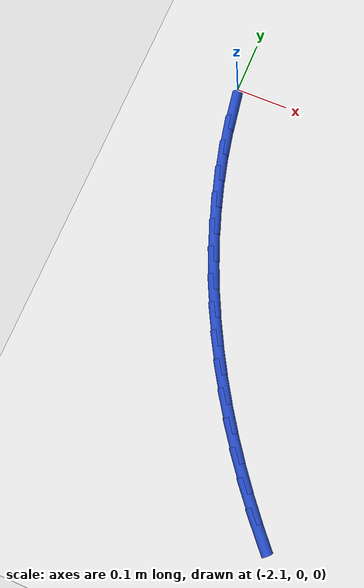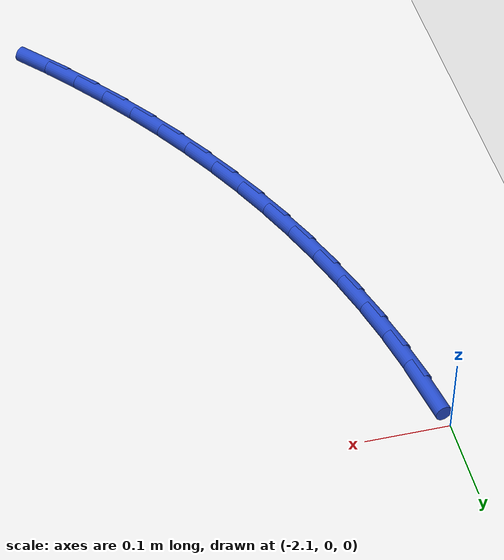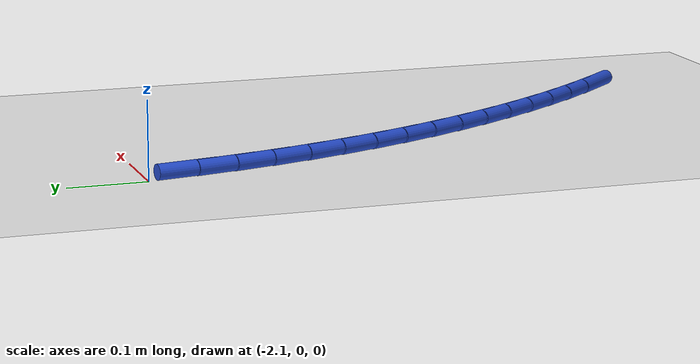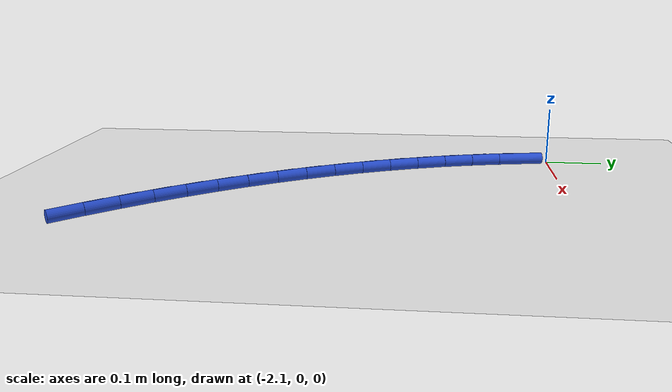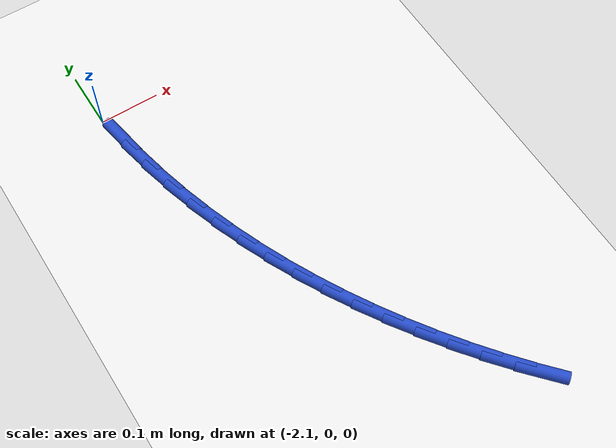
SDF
<sdf version="1.6">
 <world name="default">
  <model name="ground_plane">
   <static>1</static>
   <link name="link">
    <collision name="collision">
     <geometry><plane><normal>0 0 1</normal><size>100 100</size></plane></geometry>
     <surface><friction><ode><mu>100</mu><mu2>50</mu2></ode></friction></surface>
    </collision>
    <visual name="visual">
     <cast_shadows>0</cast_shadows>
     <geometry><plane><normal>0 0 1</normal><size>100 100</size></plane></geometry>
     <material>
      <script><uri>file://media/materials/scripts/gazebo.material</uri><name>Gazebo/WhiteGlow</name></script>
     </material>
    </visual>
   </link>
  </model>
  <model name="line">
   <link name="link_66">
    <pose>-2.088697815918494 -0.05048583094887214 0.01 0 1.57 -1.400862262318371</pose>
    <collision name="collision">
     <geometry><cylinder><radius>0.01</radius><length>0.08</length></cylinder></geometry>
    </collision>
    <visual name="visual">
     <material>
      <script><name>Gazebo/Blue</name><uri>file://media/materials/scripts/gazebo.material</uri></script>
     </material>
     <geometry><cylinder><radius>0.01</radius><length>0.08</length></cylinder></geometry>
    </visual>
   </link>
   <link name="link_67">
    <pose>-2.0799949643637183 -0.10120501671794557 0.01 0 1.57 -1.35580073788302</pose>
    <collision name="collision">
     <geometry><cylinder><radius>0.01</radius><length>0.08</length></cylinder></geometry>
    </collision>
    <visual name="visual">
     <material>
      <script><name>Gazebo/Blue</name><uri>file://media/materials/scripts/gazebo.material</uri></script>
     </material>
     <geometry><cylinder><radius>0.01</radius><length>0.08</length></cylinder></geometry>
    </visual>
   </link>
   <link name="link_68">
    <pose>-2.0689984696098374 -0.15156204817107036 0.01 0 1.57 -1.3127618969526829</pose>
    <collision name="collision">
     <geometry><cylinder><radius>0.01</radius><length>0.08</length></cylinder></geometry>
    </collision>
    <visual name="visual">
     <material>
      <script><name>Gazebo/Blue</name><uri>file://media/materials/scripts/gazebo.material</uri></script>
     </material>
     <geometry><cylinder><radius>0.01</radius><length>0.08</length></cylinder></geometry>
    </visual>
   </link>
   <link name="link_69">
    <pose>-2.055846183063273 -0.20139679996119758 0.01 0 1.57 -1.2714347452997812</pose>
    <collision name="collision">
     <geometry><cylinder><radius>0.01</radius><length>0.08</length></cylinder></geometry>
    </collision>
    <visual name="visual">
     <material>
      <script><name>Gazebo/Blue</name><uri>file://media/materials/scripts/gazebo.material</uri></script>
     </material>
     <geometry><cylinder><radius>0.01</radius><length>0.08</length></cylinder></geometry>
    </visual>
   </link>
   <link name="link_70">
    <pose>-2.0406759561304475 -0.2505491467412786 0.01 0 1.57 -1.2315017505955808</pose>
    <collision name="collision">
     <geometry><cylinder><radius>0.01</radius><length>0.08</length></cylinder></geometry>
    </collision>
    <visual name="visual">
     <material>
      <script><name>Gazebo/Blue</name><uri>file://media/materials/scripts/gazebo.material</uri></script>
     </material>
     <geometry><cylinder><radius>0.01</radius><length>0.08</length></cylinder></geometry>
    </visual>
   </link>
   <link name="link_71">
    <pose>-2.0236247603807587 -0.2988605660536489 0.01 0 1.57 -1.1924776517621476</pose>
    <collision name="collision">
     <geometry><cylinder><radius>0.01</radius><length>0.08</length></cylinder></geometry>
    </collision>
    <visual name="visual">
     <material>
      <script><name>Gazebo/Blue</name><uri>file://media/materials/scripts/gazebo.material</uri></script>
     </material>
     <geometry><cylinder><radius>0.01</radius><length>0.08</length></cylinder></geometry>
    </visual>
   </link>
   <link name="link_72">
    <pose>-2.004794647512849 -0.34623615255235873 0.01 0 1.57 -1.1540481548236485</pose>
    <collision name="collision">
     <geometry><cylinder><radius>0.01</radius><length>0.08</length></cylinder></geometry>
    </collision>
    <visual name="visual">
     <material>
      <script><name>Gazebo/Blue</name><uri>file://media/materials/scripts/gazebo.material</uri></script>
     </material>
     <geometry><cylinder><radius>0.01</radius><length>0.08</length></cylinder></geometry>
    </visual>
   </link>
   <link name="link_73">
    <pose>-1.984241888336893 -0.39266440463357893 0.01 0 1.57 -1.1162548752735213</pose>
    <collision name="collision">
     <geometry><cylinder><radius>0.01</radius><length>0.08</length></cylinder></geometry>
    </collision>
    <visual name="visual">
     <material>
      <script><name>Gazebo/Blue</name><uri>file://media/materials/scripts/gazebo.material</uri></script>
     </material>
     <geometry><cylinder><radius>0.01</radius><length>0.08</length></cylinder></geometry>
    </visual>
   </link>
   <link name="link_74">
    <pose>-1.9620196515611599 -0.4381394721108381 0.01 0 1.57 -1.0791499981902737</pose>
    <collision name="collision">
     <geometry><cylinder><radius>0.01</radius><length>0.08</length></cylinder></geometry>
    </collision>
    <visual name="visual">
     <material>
      <script><name>Gazebo/Blue</name><uri>file://media/materials/scripts/gazebo.material</uri></script>
     </material>
     <geometry><cylinder><radius>0.01</radius><length>0.08</length></cylinder></geometry>
    </visual>
   </link>
   <link name="link_75">
    <pose>-1.9381811058939158 -0.482655504797665 0.01 0 1.57 -1.0427758509318041</pose>
    <collision name="collision">
     <geometry><cylinder><radius>0.01</radius><length>0.08</length></cylinder></geometry>
    </collision>
    <visual name="visual">
     <material>
      <script><name>Gazebo/Blue</name><uri>file://media/materials/scripts/gazebo.material</uri></script>
     </material>
     <geometry><cylinder><radius>0.01</radius><length>0.08</length></cylinder></geometry>
    </visual>
   </link>
   <link name="link_76">
    <pose>-1.9127794200434294 -0.5262066525075867 0.01 0 1.57 -1.0071650928835225</pose>
    <collision name="collision">
     <geometry><cylinder><radius>0.01</radius><length>0.08</length></cylinder></geometry>
    </collision>
    <visual name="visual">
     <material>
      <script><name>Gazebo/Blue</name><uri>file://media/materials/scripts/gazebo.material</uri></script>
     </material>
     <geometry><cylinder><radius>0.01</radius><length>0.08</length></cylinder></geometry>
    </visual>
   </link>
   <link name="link_77">
    <pose>-1.8858677627179674 -0.5687870650541323 0.01 0 1.57 -0.972341101518946</pose>
    <collision name="collision">
     <geometry><cylinder><radius>0.01</radius><length>0.08</length></cylinder></geometry>
    </collision>
    <visual name="visual">
     <material>
      <script><name>Gazebo/Blue</name><uri>file://media/materials/scripts/gazebo.material</uri></script>
     </material>
     <geometry><cylinder><radius>0.01</radius><length>0.08</length></cylinder></geometry>
    </visual>
   </link>
   <link name="link_78">
    <pose>-1.8574993026257973 -0.6103908922508308 0.01 0 1.57 -0.9383185125321984</pose>
    <collision name="collision">
     <geometry><cylinder><radius>0.01</radius><length>0.08</length></cylinder></geometry>
    </collision>
    <visual name="visual">
     <material>
      <script><name>Gazebo/Blue</name><uri>file://media/materials/scripts/gazebo.material</uri></script>
     </material>
     <geometry><cylinder><radius>0.01</radius><length>0.08</length></cylinder></geometry>
    </visual>
   </link>
   <link name="link_79">
    <pose>-1.8277272084751879 -0.6510122839112088 0.01 0 1.57 -0.9051038717107711</pose>
    <collision name="collision">
     <geometry><cylinder><radius>0.01</radius><length>0.08</length></cylinder></geometry>
    </collision>
    <visual name="visual">
     <material>
      <script><name>Gazebo/Blue</name><uri>file://media/materials/scripts/gazebo.material</uri></script>
     </material>
     <geometry><cylinder><radius>0.01</radius><length>0.08</length></cylinder></geometry>
    </visual>
   </link>
   <link name="link_80">
    <pose>-1.7966046489744047 -0.6906453898487958 0.01 0 1.57 -0.8726963586688935</pose>
    <collision name="collision">
     <geometry><cylinder><radius>0.01</radius><length>0.08</length></cylinder></geometry>
    </collision>
    <visual name="visual">
     <material>
      <script><name>Gazebo/Blue</name><uri>file://media/materials/scripts/gazebo.material</uri></script>
     </material>
     <geometry><cylinder><radius>0.01</radius><length>0.08</length></cylinder></geometry>
    </visual>
   </link>
   <link name="link_81">
    <pose>-1.7641847928317174 -0.7292843598771199 0.01 0 1.57 -0.8409435806620053</pose>
    <collision name="collision">
     <geometry><cylinder><radius>0.01</radius><length>0.08</length></cylinder></geometry>
    </collision>
    <visual name="visual">
     <material>
      <script><name>Gazebo/Blue</name><uri>file://media/materials/scripts/gazebo.material</uri></script>
     </material>
     <geometry><cylinder><radius>0.01</radius><length>0.08</length></cylinder></geometry>
    </visual>
   </link>
  </model>
 </world>
</sdf>
